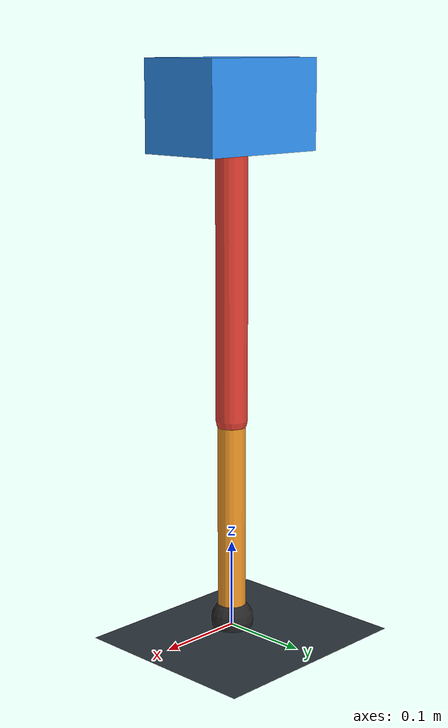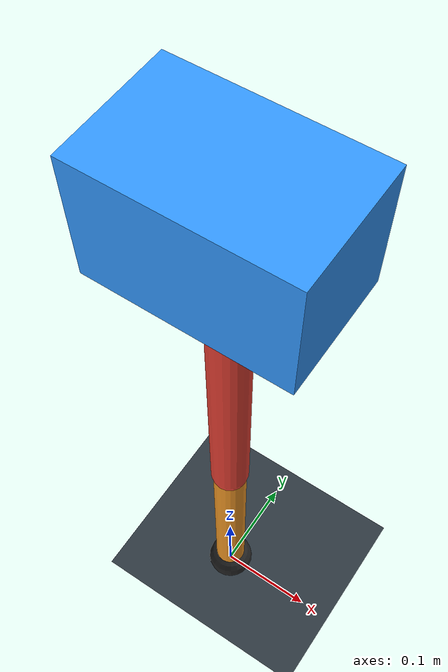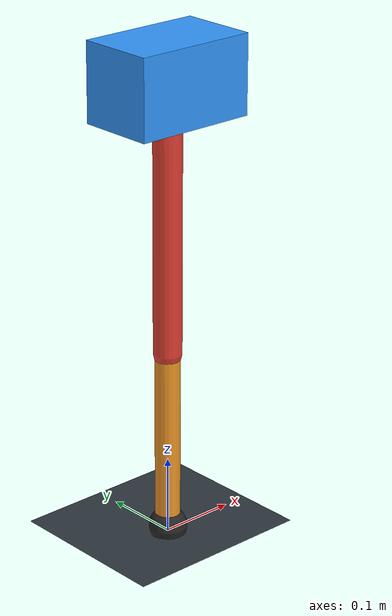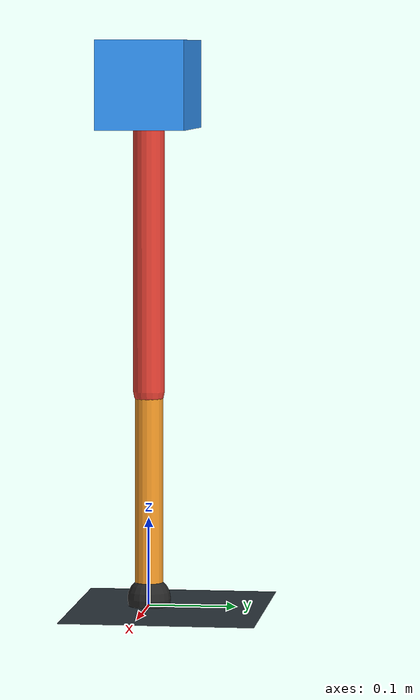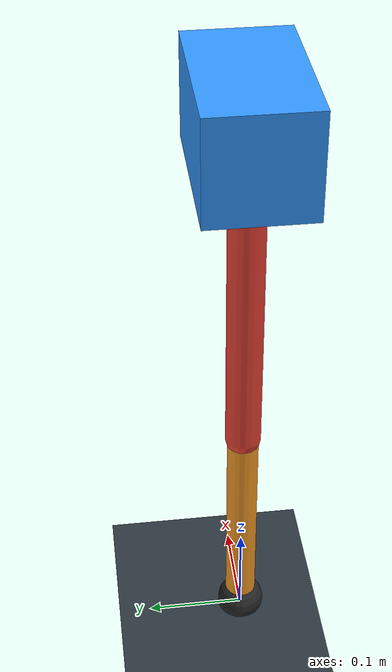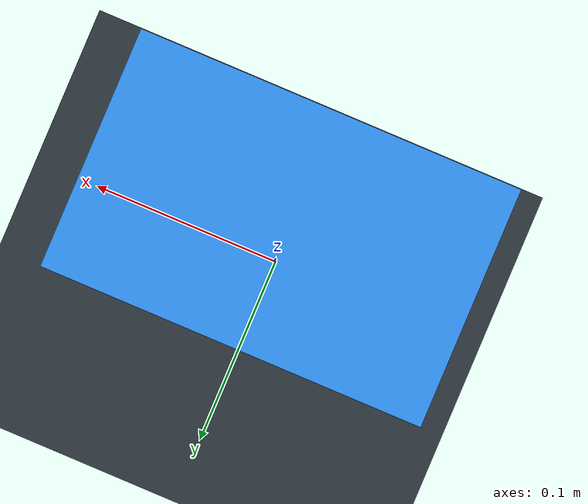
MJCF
<mujoco model="single_axis_two_bar">
  <compiler angle="radian" inertiafromgeom="true"/>
  <option timestep="0.001" integrator="implicitfast" gravity="0 0 -9.81"/>
  <default>
    <joint damping="0.08"/>
    <geom friction="1.2 0.01 0.0001" condim="3"/>
  </default>
  <worldbody>
    <geom name="floor" type="plane" size="5 5 0.1" rgba="0.18 0.22 0.25 1"/>
    <body name="carriage" pos="0 0 0.5926916400039353">
      <joint name="pole_slide" type="slide" axis="0 0 1"/>
      <geom name="payload" type="box" size="0.08 0.05 0.05" mass="2.4206089820529435" rgba="0.2 0.6 1 1"/>
      <body name="thigh" pos="0 0 0">
        <joint name="hip" type="hinge" axis="0 1 0"/>
        <geom name="thigh_link" type="capsule" fromto="0 0 0 0 0 -0.34805200210024967" size="0.018" mass="0.24799165059786443" rgba="0.9 0.25 0.2 1"/>
        <body name="shank" pos="0 0 -0.34805200210024967">
          <joint name="knee" type="hinge" axis="0 1 0"/>
          <geom name="shank_link" type="capsule" fromto="0 0 0 0 0 -0.23719711130586918" size="0.016" mass="0.169006076088725" rgba="0.95 0.6 0.15 1"/>
          <geom name="foot" type="sphere" pos="0 0 -0.23719711130586918" size="0.025" mass="0.03" rgba="0.15 0.15 0.15 1"/>
          <site name="toe" pos="0 0 -0.23719711130586918" size="0.008"/>
        </body>
      </body>
    </body>
  </worldbody>
  <actuator>
    <motor name="hip_motor" joint="hip" ctrlrange="-29.88645225072771 29.88645225072771"/>
    <motor name="knee_motor" joint="knee" ctrlrange="-38.274559625480705 38.274559625480705"/>
  </actuator>
</mujoco>
